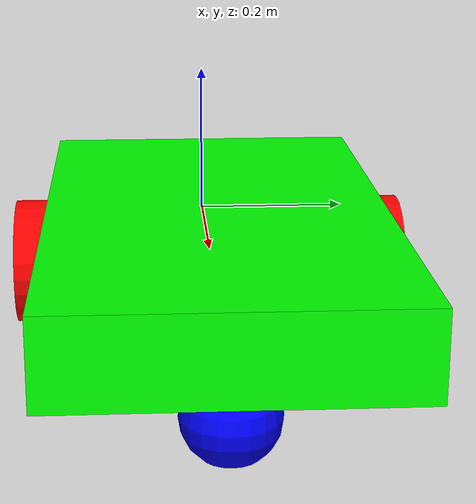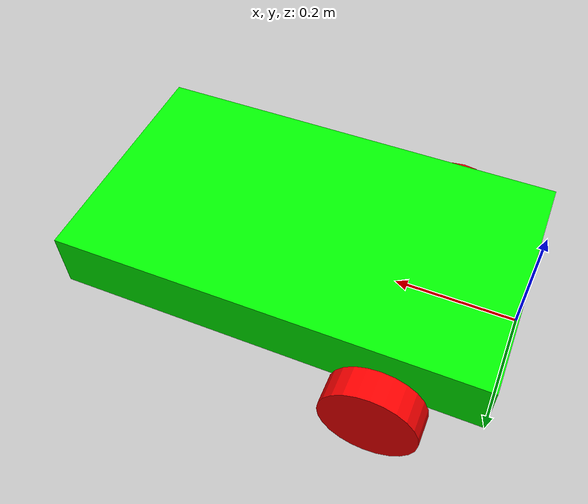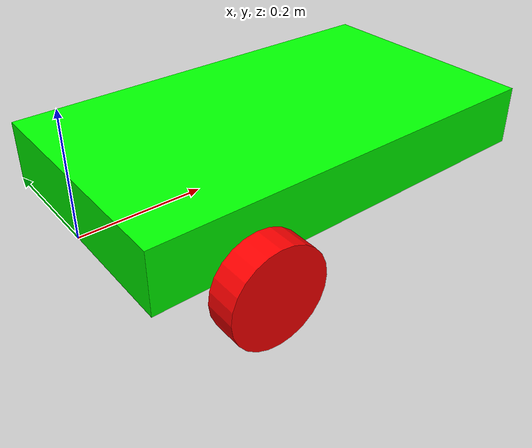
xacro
<?xml version="1.0"?>

<robot xmlns:xacro="http://www.ros.org/wiki/xacro" name="diff_bot">

  <xacro:include filename="properties.xacro"/>
  <xacro:include filename="inertial_macros.xacro"/>
  <xacro:include filename="chassis.xacro"/>
  <xacro:include filename="wheels.xacro"/>
  <xacro:include filename="caster_wheel.xacro"/>
  <xacro:include filename="gazebo_control.xacro"/>

  <!-- Base Link -->
  <link name="base_link"/>

</robot>

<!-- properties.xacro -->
<robot xmlns:xacro="http://www.ros.org/wiki/xacro">

    <!-- Properties -->
    <!-- Chassis -->
    <xacro:property name="chassis_length" value="0.7"/>
    <xacro:property name="chassis_width" value="0.40"/>
    <xacro:property name="chassis_height" value="0.1"/>
    <xacro:property name="chassis_mass" value="3.0"/>
    <!-- Wheels -->
    <xacro:property name="wheel_offset_x" value="0.16"/>
    <xacro:property name="wheel_offset_y" value="0.226"/>
    <xacro:property name="wheel_offset_z" value="-0.025"/>
    <xacro:property name="wheel_thickness" value="0.05"/>
    <xacro:property name="wheel_radius" value="0.08"/>
    <xacro:property name="wheel_mass" value="0.04"/>
    <!-- Caster Wheel -->
    <xacro:property name="caster_wheel_radius" value="0.055"/>
    <xacro:property name="caster_wheel_mass" value="0.01"/>
    <xacro:property name="caster_wheel_offset_x" value="0.6"/>
    <xacro:property name="caster_wheel_offset_z" value="-0.05"/>

    <!-- Colors -->

    <material name="white">
        <color rgba="1 1 1 1"/>
    </material>

    <material name="red">
        <color rgba="1 0 0 1"/>
    </material>

    <material name="green">
        <color rgba="0 1 0 1"/>
    </material>

    <material name="blue">
        <color rgba="0 0 1 1"/>
    </material>

    <material name="black">
        <color rgba="0 0 0 1"/>
    </material>
</robot>

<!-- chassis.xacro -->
<robot xmlns:xacro="http://www.ros.org/wiki/xacro">

    <!-- Chassis Link -->
    <link name="chassis_link">
        <visual>
            <geometry>
                <box size="${chassis_length} ${chassis_width} ${chassis_height}"/>
            </geometry>
            <origin xyz="${chassis_length/2} 0.0 ${chassis_height/2}"/>
            <material name="green"/>
        </visual>

        <collision>
            <geometry>
                <box size="${chassis_length} ${chassis_width} ${chassis_height}"/>
            </geometry>
            <origin xyz="${chassis_length/2} 0.0 ${chassis_height/2}"/>
        </collision>

    </link>

    <!-- Chassis joint -->
    <joint name="chassis_joint" type="fixed">
        <parent link="base_link"/>
        <child link="chassis_link"/>
        <origin xyz="0.0 0.0 0.0"/>
    </joint>

    <gazebo reference="chassis_link">
        <material> Gazebo/Grey </material>
    </gazebo>

</robot>

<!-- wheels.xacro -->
<robot xmlns:xacro="http://www.ros.org/wiki/xacro">

  <!-- Wheel Link Macro -->
  <xacro:macro name="wheel_link" params="link_name">
    <link name="${link_name}">
      <visual>
        <origin xyz="0 0 0" rpy="0 0 0"/>
        <geometry>
          <cylinder radius="${wheel_radius}" length="${wheel_thickness}"/>
        </geometry>
        <material name="red"/>
      </visual>
      <collision>
        <origin xyz="0 0 0" rpy="0 0 0"/>
        <geometry>
          <cylinder radius="${wheel_radius}" length="${wheel_thickness}"/>
        </geometry>
      </collision>
      <xacro:inertial_cylinder mass="${wheel_mass}" length="${wheel_thickness}" radius="${wheel_radius}">
        <origin xyz="0 0 0" rpy="0 0 0"/>
      </xacro:inertial_cylinder>
    </link>
  </xacro:macro>

  <!-- Wheel Joint Macro -->
  <xacro:macro name="wheel_joint" params="joint_name wheel_name y_offset">
    <joint name="${joint_name}" type="continuous">
      <origin xyz="${wheel_offset_x} ${y_offset} ${wheel_offset_z}" rpy="${-pi/2} 0 0"/>
      <parent link="base_link"/>
      <child link="${wheel_name}"/>
      <axis xyz="0 0 1"/>
    </joint>
  </xacro:macro>

  <!-- Left Wheel -->
  <xacro:wheel_link link_name="left_wheel_link"/>
  <xacro:wheel_joint joint_name="left_wheel_joint" wheel_name="left_wheel_link" y_offset="${wheel_offset_y}"/>

  <!-- Right Wheel -->
  <xacro:wheel_link link_name="right_wheel_link"/>
  <xacro:wheel_joint joint_name="right_wheel_joint" wheel_name="right_wheel_link" y_offset="${-wheel_offset_y}"/>

  <!-- Gazebo Materials -->
  <gazebo reference="left_wheel_link">
    <material>Gazebo/Black</material>
  </gazebo>
  <gazebo reference="right_wheel_link">
    <material>Gazebo/Black</material>
  </gazebo>
</robot>

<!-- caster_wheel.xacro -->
<robot xmlns:xacro="http://www.ros.org/wiki/xacro">

    <!-- Caster Wheel Link -->
    <link name="caster_wheel_link">
        <visual>
            <origin xyz="0.0 0.0 0.0" rpy="0.0 0.0 0.0"/>
            <geometry>
                <sphere radius="${caster_wheel_radius}"/>
            </geometry>
            <material name="blue"/>
        </visual>
        <collision>
            <origin xyz="0.0 0.0 0.0" rpy="0.0 0.0 0.0"/>
            <geometry>
                <sphere radius="${caster_wheel_radius}"/>
            </geometry>
        </collision>

        <xacro:inertial_sphere mass="${caster_wheel_mass}" radius="${caster_wheel_radius}">
            <origin xyz="0.0 0.0 0.0" rpy="0.0 0.0 0.0"/>
        </xacro:inertial_sphere>
    </link>

    <!-- Caster Wheel Joit -->
    <joint name="caster_wheel_joint" type="fixed">
        <origin xyz="${caster_wheel_offset_x} 0.0 ${caster_wheel_offset_z}" rpy="0.0 0.0 0.0"/>
        <parent link="chassis_link"/>
        <child link="caster_wheel_link"/>
    </joint>

    <gazebo reference="caster_wheel_link">
        <mu1 value="0.001"/>
        <mu2 value="0.001"/>
    </gazebo>

</robot>
